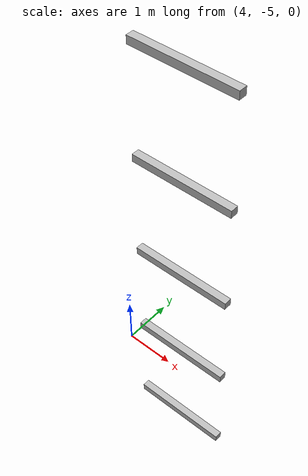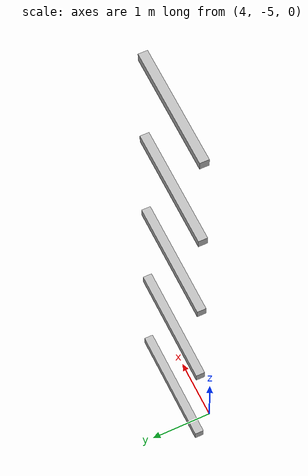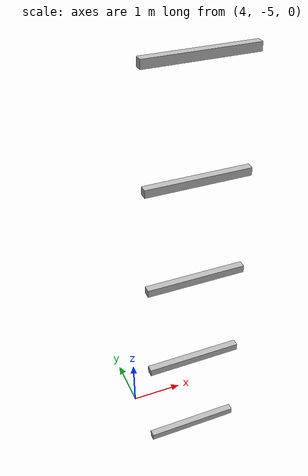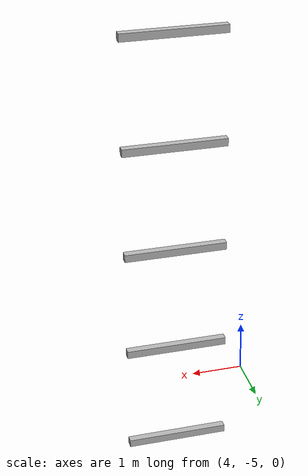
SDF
<sdf version="1.7">
 <world name="default">
  <model name="orthogonal_747_2.000.15_TS">
   <static>1</static>
   <link name="x_link_0_0_5">
    <inertial>
     <mass>1</mass>
     <inertia>
      <ixx>0.166667</ixx>
      <ixy>0</ixy>
      <ixz>0</ixz>
      <iyy>0.166667</iyy>
      <iyz>0</iyz>
      <izz>0.166667</izz>
     </inertia>
    </inertial>
    <pose>11.825 0 1.075 0 -0 0</pose>
    <visual name="visual_0">
     <laser_retro>106</laser_retro>
     <geometry><box><size>2 1e-06 0.15</size></box></geometry>
     <material>
      <script><name>Gazebo/Grey</name><uri>file://media/materials/scripts/gazebo.material</uri></script>
      <shader type="pixel"><normal_map>__default__</normal_map></shader>
      <ambient>0.678 0.498 0.659 1</ambient>
      <diffuse>0.7 0.7 0.7 1</diffuse>
      <specular>0.01 0.01 0.01 1</specular>
      <emissive>0 0 0 1</emissive>
     </material>
     <pose>0 -0.075 0 0 -0 0</pose>
     <transparency>1</transparency>
    </visual>
    <visual name="visual_1">
     <laser_retro>107</laser_retro>
     <geometry><box><size>2 1e-06 0.15</size></box></geometry>
     <material>
      <script><name>Gazebo/Grey</name><uri>file://media/materials/scripts/gazebo.material</uri></script>
      <shader type="pixel"><normal_map>__default__</normal_map></shader>
      <ambient>0.447 0.624 0.812 1</ambient>
      <diffuse>0.7 0.7 0.7 1</diffuse>
      <specular>0.01 0.01 0.01 1</specular>
      <emissive>0 0 0 1</emissive>
     </material>
     <pose>0 0.075 0 0 -0 0</pose>
     <transparency>1</transparency>
    </visual>
    <visual name="visual_2">
     <laser_retro>108</laser_retro>
     <geometry><box><size>2 0.15 1e-06</size></box></geometry>
     <material>
      <script><name>Gazebo/Grey</name><uri>file://media/materials/scripts/gazebo.material</uri></script>
      <shader type="pixel"><normal_map>__default__</normal_map></shader>
      <ambient>0.988 0.686 0.243 1</ambient>
      <diffuse>0.7 0.7 0.7 1</diffuse>
      <specular>0.01 0.01 0.01 1</specular>
      <emissive>0 0 0 1</emissive>
     </material>
     <pose>0 0 -0.075 0 -0 0</pose>
     <transparency>1</transparency>
    </visual>
    <visual name="visual_3">
     <laser_retro>109</laser_retro>
     <geometry><box><size>1e-06 0.15 0.15</size></box></geometry>
     <material>
      <script><name>Gazebo/Grey</name><uri>file://media/materials/scripts/gazebo.material</uri></script>
      <shader type="pixel"><normal_map>__default__</normal_map></shader>
      <ambient>0.988 0.914 0.31 1</ambient>
      <diffuse>0.7 0.7 0.7 1</diffuse>
      <specular>0.01 0.01 0.01 1</specular>
      <emissive>0 0 0 1</emissive>
     </material>
     <pose>1 0 0 0 -0 0</pose>
     <transparency>1</transparency>
    </visual>
    <visual name="visual_4">
     <laser_retro>110</laser_retro>
     <geometry><box><size>2 0.15 1e-06</size></box></geometry>
     <material>
      <script><name>Gazebo/Grey</name><uri>file://media/materials/scripts/gazebo.material</uri></script>
      <shader type="pixel"><normal_map>__default__</normal_map></shader>
      <ambient>0.937 0.161 0.161 1</ambient>
      <diffuse>0.7 0.7 0.7 1</diffuse>
      <specular>0.01 0.01 0.01 1</specular>
      <emissive>0 0 0 1</emissive>
     </material>
     <pose>0 0 0.075 0 -0 0</pose>
     <transparency>1</transparency>
    </visual>
    <visual name="visual_5">
     <laser_retro>111</laser_retro>
     <geometry><box><size>1e-06 0.15 0.15</size></box></geometry>
     <material>
      <script><name>Gazebo/Grey</name><uri>file://media/materials/scripts/gazebo.material</uri></script>
      <shader type="pixel"><normal_map>__default__</normal_map></shader>
      <ambient>0.541 0.886 0.204 1</ambient>
      <diffuse>0.7 0.7 0.7 1</diffuse>
      <specular>0.01 0.01 0.01 1</specular>
      <emissive>0 0 0 1</emissive>
     </material>
     <pose>-1 0 0 0 -0 0</pose>
     <transparency>1</transparency>
    </visual>
    <visual name="visual_texture">
     <geometry><box><size>1.9998 0.149985 0.149985</size></box></geometry>
     <material>
      <script>
       <uri>model://BASE_MODELS/simple_block_v2_textured/materials/scripts</uri>
       <uri>model://BASE_MODELS/simple_block_v2_textured/materials/textures</uri>
       <name>metal</name>
      </script>
     </material>
     <laser_retro>112</laser_retro>
    </visual>
    <collision name="collision">
     <geometry><box><size>2 0.15 0.15</size></box></geometry>
     <surface>
      <friction>
       <ode><mu>1</mu><mu2>1</mu2><fdir1>0 0 0</fdir1><slip1>0</slip1><slip2>0</slip2></ode>
       <torsional>
        <coefficient>1</coefficient>
        <patch_radius>0</patch_radius>
        <surface_radius>0</surface_radius>
        <use_patch_radius>1</use_patch_radius>
        <ode><slip>0</slip></ode>
       </torsional>
      </friction>
      <bounce><restitution_coefficient>0</restitution_coefficient><threshold>1e+06</threshold></bounce>
      <contact>
       <collide_without_contact>0</collide_without_contact>
       <collide_without_contact_bitmask>1</collide_without_contact_bitmask>
       <collide_bitmask>1</collide_bitmask>
       <ode>
        <soft_cfm>0</soft_cfm>
        <soft_erp>0.2</soft_erp>
        <kp>1e+13</kp>
        <kd>1</kd>
        <max_vel>0.01</max_vel>
        <min_depth>0</min_depth>
       </ode>
       <bullet>
        <split_impulse>1</split_impulse>
        <split_impulse_penetration_threshold>-0.01</split_impulse_penetration_threshold>
        <soft_cfm>0</soft_cfm>
        <soft_erp>0.2</soft_erp>
        <kp>1e+13</kp>
        <kd>1</kd>
       </bullet>
      </contact>
     </surface>
    </collision>
   </link>
   <link name="x_link_1_0_5">
    <inertial>
     <mass>1</mass>
     <inertia>
      <ixx>0.166667</ixx>
      <ixy>0</ixy>
      <ixz>0</ixz>
      <iyy>0.166667</iyy>
      <iyz>0</iyz>
      <izz>0.166667</izz>
     </inertia>
    </inertial>
    <pose>11.825 0 3.225 0 -0 0</pose>
    <visual name="visual_0">
     <laser_retro>890</laser_retro>
     <geometry><box><size>2 1e-06 0.15</size></box></geometry>
     <material>
      <script><name>Gazebo/Grey</name><uri>file://media/materials/scripts/gazebo.material</uri></script>
      <shader type="pixel"><normal_map>__default__</normal_map></shader>
      <ambient>0.678 0.498 0.659 1</ambient>
      <diffuse>0.7 0.7 0.7 1</diffuse>
      <specular>0.01 0.01 0.01 1</specular>
      <emissive>0 0 0 1</emissive>
     </material>
     <pose>0 -0.075 0 0 -0 0</pose>
     <transparency>1</transparency>
    </visual>
    <visual name="visual_1">
     <laser_retro>891</laser_retro>
     <geometry><box><size>2 1e-06 0.15</size></box></geometry>
     <material>
      <script><name>Gazebo/Grey</name><uri>file://media/materials/scripts/gazebo.material</uri></script>
      <shader type="pixel"><normal_map>__default__</normal_map></shader>
      <ambient>0.447 0.624 0.812 1</ambient>
      <diffuse>0.7 0.7 0.7 1</diffuse>
      <specular>0.01 0.01 0.01 1</specular>
      <emissive>0 0 0 1</emissive>
     </material>
     <pose>0 0.075 0 0 -0 0</pose>
     <transparency>1</transparency>
    </visual>
    <visual name="visual_2">
     <laser_retro>892</laser_retro>
     <geometry><box><size>2 0.15 1e-06</size></box></geometry>
     <material>
      <script><name>Gazebo/Grey</name><uri>file://media/materials/scripts/gazebo.material</uri></script>
      <shader type="pixel"><normal_map>__default__</normal_map></shader>
      <ambient>0.988 0.686 0.243 1</ambient>
      <diffuse>0.7 0.7 0.7 1</diffuse>
      <specular>0.01 0.01 0.01 1</specular>
      <emissive>0 0 0 1</emissive>
     </material>
     <pose>0 0 -0.075 0 -0 0</pose>
     <transparency>1</transparency>
    </visual>
    <visual name="visual_3">
     <laser_retro>893</laser_retro>
     <geometry><box><size>1e-06 0.15 0.15</size></box></geometry>
     <material>
      <script><name>Gazebo/Grey</name><uri>file://media/materials/scripts/gazebo.material</uri></script>
      <shader type="pixel"><normal_map>__default__</normal_map></shader>
      <ambient>0.988 0.914 0.31 1</ambient>
      <diffuse>0.7 0.7 0.7 1</diffuse>
      <specular>0.01 0.01 0.01 1</specular>
      <emissive>0 0 0 1</emissive>
     </material>
     <pose>1 0 0 0 -0 0</pose>
     <transparency>1</transparency>
    </visual>
    <visual name="visual_4">
     <laser_retro>894</laser_retro>
     <geometry><box><size>2 0.15 1e-06</size></box></geometry>
     <material>
      <script><name>Gazebo/Grey</name><uri>file://media/materials/scripts/gazebo.material</uri></script>
      <shader type="pixel"><normal_map>__default__</normal_map></shader>
      <ambient>0.937 0.161 0.161 1</ambient>
      <diffuse>0.7 0.7 0.7 1</diffuse>
      <specular>0.01 0.01 0.01 1</specular>
      <emissive>0 0 0 1</emissive>
     </material>
     <pose>0 0 0.075 0 -0 0</pose>
     <transparency>1</transparency>
    </visual>
    <visual name="visual_5">
     <laser_retro>895</laser_retro>
     <geometry><box><size>1e-06 0.15 0.15</size></box></geometry>
     <material>
      <script><name>Gazebo/Grey</name><uri>file://media/materials/scripts/gazebo.material</uri></script>
      <shader type="pixel"><normal_map>__default__</normal_map></shader>
      <ambient>0.541 0.886 0.204 1</ambient>
      <diffuse>0.7 0.7 0.7 1</diffuse>
      <specular>0.01 0.01 0.01 1</specular>
      <emissive>0 0 0 1</emissive>
     </material>
     <pose>-1 0 0 0 -0 0</pose>
     <transparency>1</transparency>
    </visual>
    <visual name="visual_texture">
     <geometry><box><size>1.9998 0.149985 0.149985</size></box></geometry>
     <material>
      <script>
       <uri>model://BASE_MODELS/simple_block_v2_textured/materials/scripts</uri>
       <uri>model://BASE_MODELS/simple_block_v2_textured/materials/textures</uri>
       <name>metal</name>
      </script>
     </material>
     <laser_retro>896</laser_retro>
    </visual>
    <collision name="collision">
     <geometry><box><size>2 0.15 0.15</size></box></geometry>
     <surface>
      <friction>
       <ode><mu>1</mu><mu2>1</mu2><fdir1>0 0 0</fdir1><slip1>0</slip1><slip2>0</slip2></ode>
       <torsional>
        <coefficient>1</coefficient>
        <patch_radius>0</patch_radius>
        <surface_radius>0</surface_radius>
        <use_patch_radius>1</use_patch_radius>
        <ode><slip>0</slip></ode>
       </torsional>
      </friction>
      <bounce><restitution_coefficient>0</restitution_coefficient><threshold>1e+06</threshold></bounce>
      <contact>
       <collide_without_contact>0</collide_without_contact>
       <collide_without_contact_bitmask>1</collide_without_contact_bitmask>
       <collide_bitmask>1</collide_bitmask>
       <ode>
        <soft_cfm>0</soft_cfm>
        <soft_erp>0.2</soft_erp>
        <kp>1e+13</kp>
        <kd>1</kd>
        <max_vel>0.01</max_vel>
        <min_depth>0</min_depth>
       </ode>
       <bullet>
        <split_impulse>1</split_impulse>
        <split_impulse_penetration_threshold>-0.01</split_impulse_penetration_threshold>
        <soft_cfm>0</soft_cfm>
        <soft_erp>0.2</soft_erp>
        <kp>1e+13</kp>
        <kd>1</kd>
       </bullet>
      </contact>
     </surface>
    </collision>
   </link>
   <link name="x_link_2_0_5">
    <inertial>
     <mass>1</mass>
     <inertia>
      <ixx>0.166667</ixx>
      <ixy>0</ixy>
      <ixz>0</ixz>
      <iyy>0.166667</iyy>
      <iyz>0</iyz>
      <izz>0.166667</izz>
     </inertia>
    </inertial>
    <pose>11.825 0 5.375 0 -0 0</pose>
    <visual name="visual_0">
     <laser_retro>1793</laser_retro>
     <geometry><box><size>2 1e-06 0.15</size></box></geometry>
     <material>
      <script><name>Gazebo/Grey</name><uri>file://media/materials/scripts/gazebo.material</uri></script>
      <shader type="pixel"><normal_map>__default__</normal_map></shader>
      <ambient>0.678 0.498 0.659 1</ambient>
      <diffuse>0.7 0.7 0.7 1</diffuse>
      <specular>0.01 0.01 0.01 1</specular>
      <emissive>0 0 0 1</emissive>
     </material>
     <pose>0 -0.075 0 0 -0 0</pose>
     <transparency>1</transparency>
    </visual>
    <visual name="visual_1">
     <laser_retro>1794</laser_retro>
     <geometry><box><size>2 1e-06 0.15</size></box></geometry>
     <material>
      <script><name>Gazebo/Grey</name><uri>file://media/materials/scripts/gazebo.material</uri></script>
      <shader type="pixel"><normal_map>__default__</normal_map></shader>
      <ambient>0.447 0.624 0.812 1</ambient>
      <diffuse>0.7 0.7 0.7 1</diffuse>
      <specular>0.01 0.01 0.01 1</specular>
      <emissive>0 0 0 1</emissive>
     </material>
     <pose>0 0.075 0 0 -0 0</pose>
     <transparency>1</transparency>
    </visual>
    <visual name="visual_2">
     <laser_retro>1795</laser_retro>
     <geometry><box><size>2 0.15 1e-06</size></box></geometry>
     <material>
      <script><name>Gazebo/Grey</name><uri>file://media/materials/scripts/gazebo.material</uri></script>
      <shader type="pixel"><normal_map>__default__</normal_map></shader>
      <ambient>0.988 0.686 0.243 1</ambient>
      <diffuse>0.7 0.7 0.7 1</diffuse>
      <specular>0.01 0.01 0.01 1</specular>
      <emissive>0 0 0 1</emissive>
     </material>
     <pose>0 0 -0.075 0 -0 0</pose>
     <transparency>1</transparency>
    </visual>
    <visual name="visual_3">
     <laser_retro>1796</laser_retro>
     <geometry><box><size>1e-06 0.15 0.15</size></box></geometry>
     <material>
      <script><name>Gazebo/Grey</name><uri>file://media/materials/scripts/gazebo.material</uri></script>
      <shader type="pixel"><normal_map>__default__</normal_map></shader>
      <ambient>0.988 0.914 0.31 1</ambient>
      <diffuse>0.7 0.7 0.7 1</diffuse>
      <specular>0.01 0.01 0.01 1</specular>
      <emissive>0 0 0 1</emissive>
     </material>
     <pose>1 0 0 0 -0 0</pose>
     <transparency>1</transparency>
    </visual>
    <visual name="visual_4">
     <laser_retro>1797</laser_retro>
     <geometry><box><size>2 0.15 1e-06</size></box></geometry>
     <material>
      <script><name>Gazebo/Grey</name><uri>file://media/materials/scripts/gazebo.material</uri></script>
      <shader type="pixel"><normal_map>__default__</normal_map></shader>
      <ambient>0.937 0.161 0.161 1</ambient>
      <diffuse>0.7 0.7 0.7 1</diffuse>
      <specular>0.01 0.01 0.01 1</specular>
      <emissive>0 0 0 1</emissive>
     </material>
     <pose>0 0 0.075 0 -0 0</pose>
     <transparency>1</transparency>
    </visual>
    <visual name="visual_5">
     <laser_retro>1798</laser_retro>
     <geometry><box><size>1e-06 0.15 0.15</size></box></geometry>
     <material>
      <script><name>Gazebo/Grey</name><uri>file://media/materials/scripts/gazebo.material</uri></script>
      <shader type="pixel"><normal_map>__default__</normal_map></shader>
      <ambient>0.541 0.886 0.204 1</ambient>
      <diffuse>0.7 0.7 0.7 1</diffuse>
      <specular>0.01 0.01 0.01 1</specular>
      <emissive>0 0 0 1</emissive>
     </material>
     <pose>-1 0 0 0 -0 0</pose>
     <transparency>1</transparency>
    </visual>
    <visual name="visual_texture">
     <geometry><box><size>1.9998 0.149985 0.149985</size></box></geometry>
     <material>
      <script>
       <uri>model://BASE_MODELS/simple_block_v2_textured/materials/scripts</uri>
       <uri>model://BASE_MODELS/simple_block_v2_textured/materials/textures</uri>
       <name>metal</name>
      </script>
     </material>
     <laser_retro>1799</laser_retro>
    </visual>
    <collision name="collision">
     <geometry><box><size>2 0.15 0.15</size></box></geometry>
     <surface>
      <friction>
       <ode><mu>1</mu><mu2>1</mu2><fdir1>0 0 0</fdir1><slip1>0</slip1><slip2>0</slip2></ode>
       <torsional>
        <coefficient>1</coefficient>
        <patch_radius>0</patch_radius>
        <surface_radius>0</surface_radius>
        <use_patch_radius>1</use_patch_radius>
        <ode><slip>0</slip></ode>
       </torsional>
      </friction>
      <bounce><restitution_coefficient>0</restitution_coefficient><threshold>1e+06</threshold></bounce>
      <contact>
       <collide_without_contact>0</collide_without_contact>
       <collide_without_contact_bitmask>1</collide_without_contact_bitmask>
       <collide_bitmask>1</collide_bitmask>
       <ode>
        <soft_cfm>0</soft_cfm>
        <soft_erp>0.2</soft_erp>
        <kp>1e+13</kp>
        <kd>1</kd>
        <max_vel>0.01</max_vel>
        <min_depth>0</min_depth>
       </ode>
       <bullet>
        <split_impulse>1</split_impulse>
        <split_impulse_penetration_threshold>-0.01</split_impulse_penetration_threshold>
        <soft_cfm>0</soft_cfm>
        <soft_erp>0.2</soft_erp>
        <kp>1e+13</kp>
        <kd>1</kd>
       </bullet>
      </contact>
     </surface>
    </collision>
   </link>
   <link name="x_link_3_0_5">
    <inertial>
     <mass>1</mass>
     <inertia>
      <ixx>0.166667</ixx>
      <ixy>0</ixy>
      <ixz>0</ixz>
      <iyy>0.166667</iyy>
      <iyz>0</iyz>
      <izz>0.166667</izz>
     </inertia>
    </inertial>
    <pose>11.825 0 7.525 0 -0 0</pose>
    <visual name="visual_0">
     <laser_retro>2696</laser_retro>
     <geometry><box><size>2 1e-06 0.15</size></box></geometry>
     <material>
      <script><name>Gazebo/Grey</name><uri>file://media/materials/scripts/gazebo.material</uri></script>
      <shader type="pixel"><normal_map>__default__</normal_map></shader>
      <ambient>0.678 0.498 0.659 1</ambient>
      <diffuse>0.7 0.7 0.7 1</diffuse>
      <specular>0.01 0.01 0.01 1</specular>
      <emissive>0 0 0 1</emissive>
     </material>
     <pose>0 -0.075 0 0 -0 0</pose>
     <transparency>1</transparency>
    </visual>
    <visual name="visual_1">
     <laser_retro>2697</laser_retro>
     <geometry><box><size>2 1e-06 0.15</size></box></geometry>
     <material>
      <script><name>Gazebo/Grey</name><uri>file://media/materials/scripts/gazebo.material</uri></script>
      <shader type="pixel"><normal_map>__default__</normal_map></shader>
      <ambient>0.447 0.624 0.812 1</ambient>
      <diffuse>0.7 0.7 0.7 1</diffuse>
      <specular>0.01 0.01 0.01 1</specular>
      <emissive>0 0 0 1</emissive>
     </material>
     <pose>0 0.075 0 0 -0 0</pose>
     <transparency>1</transparency>
    </visual>
    <visual name="visual_2">
     <laser_retro>2698</laser_retro>
     <geometry><box><size>2 0.15 1e-06</size></box></geometry>
     <material>
      <script><name>Gazebo/Grey</name><uri>file://media/materials/scripts/gazebo.material</uri></script>
      <shader type="pixel"><normal_map>__default__</normal_map></shader>
      <ambient>0.988 0.686 0.243 1</ambient>
      <diffuse>0.7 0.7 0.7 1</diffuse>
      <specular>0.01 0.01 0.01 1</specular>
      <emissive>0 0 0 1</emissive>
     </material>
     <pose>0 0 -0.075 0 -0 0</pose>
     <transparency>1</transparency>
    </visual>
    <visual name="visual_3">
     <laser_retro>2699</laser_retro>
     <geometry><box><size>1e-06 0.15 0.15</size></box></geometry>
     <material>
      <script><name>Gazebo/Grey</name><uri>file://media/materials/scripts/gazebo.material</uri></script>
      <shader type="pixel"><normal_map>__default__</normal_map></shader>
      <ambient>0.988 0.914 0.31 1</ambient>
      <diffuse>0.7 0.7 0.7 1</diffuse>
      <specular>0.01 0.01 0.01 1</specular>
      <emissive>0 0 0 1</emissive>
     </material>
     <pose>1 0 0 0 -0 0</pose>
     <transparency>1</transparency>
    </visual>
    <visual name="visual_4">
     <laser_retro>2700</laser_retro>
     <geometry><box><size>2 0.15 1e-06</size></box></geometry>
     <material>
      <script><name>Gazebo/Grey</name><uri>file://media/materials/scripts/gazebo.material</uri></script>
      <shader type="pixel"><normal_map>__default__</normal_map></shader>
      <ambient>0.937 0.161 0.161 1</ambient>
      <diffuse>0.7 0.7 0.7 1</diffuse>
      <specular>0.01 0.01 0.01 1</specular>
      <emissive>0 0 0 1</emissive>
     </material>
     <pose>0 0 0.075 0 -0 0</pose>
     <transparency>1</transparency>
    </visual>
    <visual name="visual_5">
     <laser_retro>2701</laser_retro>
     <geometry><box><size>1e-06 0.15 0.15</size></box></geometry>
     <material>
      <script><name>Gazebo/Grey</name><uri>file://media/materials/scripts/gazebo.material</uri></script>
      <shader type="pixel"><normal_map>__default__</normal_map></shader>
      <ambient>0.541 0.886 0.204 1</ambient>
      <diffuse>0.7 0.7 0.7 1</diffuse>
      <specular>0.01 0.01 0.01 1</specular>
      <emissive>0 0 0 1</emissive>
     </material>
     <pose>-1 0 0 0 -0 0</pose>
     <transparency>1</transparency>
    </visual>
    <visual name="visual_texture">
     <geometry><box><size>1.9998 0.149985 0.149985</size></box></geometry>
     <material>
      <script>
       <uri>model://BASE_MODELS/simple_block_v2_textured/materials/scripts</uri>
       <uri>model://BASE_MODELS/simple_block_v2_textured/materials/textures</uri>
       <name>metal</name>
      </script>
     </material>
     <laser_retro>2702</laser_retro>
    </visual>
    <collision name="collision">
     <geometry><box><size>2 0.15 0.15</size></box></geometry>
     <surface>
      <friction>
       <ode><mu>1</mu><mu2>1</mu2><fdir1>0 0 0</fdir1><slip1>0</slip1><slip2>0</slip2></ode>
       <torsional>
        <coefficient>1</coefficient>
        <patch_radius>0</patch_radius>
        <surface_radius>0</surface_radius>
        <use_patch_radius>1</use_patch_radius>
        <ode><slip>0</slip></ode>
       </torsional>
      </friction>
      <bounce><restitution_coefficient>0</restitution_coefficient><threshold>1e+06</threshold></bounce>
      <contact>
       <collide_without_contact>0</collide_without_contact>
       <collide_without_contact_bitmask>1</collide_without_contact_bitmask>
       <collide_bitmask>1</collide_bitmask>
       <ode>
        <soft_cfm>0</soft_cfm>
        <soft_erp>0.2</soft_erp>
        <kp>1e+13</kp>
        <kd>1</kd>
        <max_vel>0.01</max_vel>
        <min_depth>0</min_depth>
       </ode>
       <bullet>
        <split_impulse>1</split_impulse>
        <split_impulse_penetration_threshold>-0.01</split_impulse_penetration_threshold>
        <soft_cfm>0</soft_cfm>
        <soft_erp>0.2</soft_erp>
        <kp>1e+13</kp>
        <kd>1</kd>
       </bullet>
      </contact>
     </surface>
    </collision>
   </link>
   <link name="x_link_4_0_5">
    <inertial>
     <mass>1</mass>
     <inertia>
      <ixx>0.166667</ixx>
      <ixy>0</ixy>
      <ixz>0</ixz>
      <iyy>0.166667</iyy>
      <iyz>0</iyz>
      <izz>0.166667</izz>
     </inertia>
    </inertial>
    <pose>11.825 0 9.675 0 -0 0</pose>
    <visual name="visual_0">
     <laser_retro>3599</laser_retro>
     <geometry><box><size>2 1e-06 0.15</size></box></geometry>
     <material>
      <script><name>Gazebo/Grey</name><uri>file://media/materials/scripts/gazebo.material</uri></script>
      <shader type="pixel"><normal_map>__default__</normal_map></shader>
      <ambient>0.678 0.498 0.659 1</ambient>
      <diffuse>0.7 0.7 0.7 1</diffuse>
      <specular>0.01 0.01 0.01 1</specular>
      <emissive>0 0 0 1</emissive>
     </material>
     <pose>0 -0.075 0 0 -0 0</pose>
     <transparency>1</transparency>
    </visual>
    <visual name="visual_1">
     <laser_retro>3600</laser_retro>
     <geometry><box><size>2 1e-06 0.15</size></box></geometry>
     <material>
      <script><name>Gazebo/Grey</name><uri>file://media/materials/scripts/gazebo.material</uri></script>
      <shader type="pixel"><normal_map>__default__</normal_map></shader>
      <ambient>0.447 0.624 0.812 1</ambient>
      <diffuse>0.7 0.7 0.7 1</diffuse>
      <specular>0.01 0.01 0.01 1</specular>
      <emissive>0 0 0 1</emissive>
     </material>
     <pose>0 0.075 0 0 -0 0</pose>
     <transparency>1</transparency>
    </visual>
    <visual name="visual_2">
     <laser_retro>3601</laser_retro>
     <geometry><box><size>2 0.15 1e-06</size></box></geometry>
     <material>
      <script><name>Gazebo/Grey</name><uri>file://media/materials/scripts/gazebo.material</uri></script>
      <shader type="pixel"><normal_map>__default__</normal_map></shader>
      <ambient>0.988 0.686 0.243 1</ambient>
      <diffuse>0.7 0.7 0.7 1</diffuse>
      <specular>0.01 0.01 0.01 1</specular>
      <emissive>0 0 0 1</emissive>
     </material>
     <pose>0 0 -0.075 0 -0 0</pose>
     <transparency>1</transparency>
    </visual>
    <visual name="visual_3">
     <laser_retro>3602</laser_retro>
     <geometry><box><size>1e-06 0.15 0.15</size></box></geometry>
     <material>
      <script><name>Gazebo/Grey</name><uri>file://media/materials/scripts/gazebo.material</uri></script>
      <shader type="pixel"><normal_map>__default__</normal_map></shader>
      <ambient>0.988 0.914 0.31 1</ambient>
      <diffuse>0.7 0.7 0.7 1</diffuse>
      <specular>0.01 0.01 0.01 1</specular>
      <emissive>0 0 0 1</emissive>
     </material>
     <pose>1 0 0 0 -0 0</pose>
     <transparency>1</transparency>
    </visual>
    <visual name="visual_4">
     <laser_retro>3603</laser_retro>
     <geometry><box><size>2 0.15 1e-06</size></box></geometry>
     <material>
      <script><name>Gazebo/Grey</name><uri>file://media/materials/scripts/gazebo.material</uri></script>
      <shader type="pixel"><normal_map>__default__</normal_map></shader>
      <ambient>0.937 0.161 0.161 1</ambient>
      <diffuse>0.7 0.7 0.7 1</diffuse>
      <specular>0.01 0.01 0.01 1</specular>
      <emissive>0 0 0 1</emissive>
     </material>
     <pose>0 0 0.075 0 -0 0</pose>
     <transparency>1</transparency>
    </visual>
    <visual name="visual_5">
     <laser_retro>3604</laser_retro>
     <geometry><box><size>1e-06 0.15 0.15</size></box></geometry>
     <material>
      <script><name>Gazebo/Grey</name><uri>file://media/materials/scripts/gazebo.material</uri></script>
      <shader type="pixel"><normal_map>__default__</normal_map></shader>
      <ambient>0.541 0.886 0.204 1</ambient>
      <diffuse>0.7 0.7 0.7 1</diffuse>
      <specular>0.01 0.01 0.01 1</specular>
      <emissive>0 0 0 1</emissive>
     </material>
     <pose>-1 0 0 0 -0 0</pose>
     <transparency>1</transparency>
    </visual>
    <visual name="visual_texture">
     <geometry><box><size>1.9998 0.149985 0.149985</size></box></geometry>
     <material>
      <script>
       <uri>model://BASE_MODELS/simple_block_v2_textured/materials/scripts</uri>
       <uri>model://BASE_MODELS/simple_block_v2_textured/materials/textures</uri>
       <name>metal</name>
      </script>
     </material>
     <laser_retro>3605</laser_retro>
    </visual>
    <collision name="collision">
     <geometry><box><size>2 0.15 0.15</size></box></geometry>
     <surface>
      <friction>
       <ode><mu>1</mu><mu2>1</mu2><fdir1>0 0 0</fdir1><slip1>0</slip1><slip2>0</slip2></ode>
       <torsional>
        <coefficient>1</coefficient>
        <patch_radius>0</patch_radius>
        <surface_radius>0</surface_radius>
        <use_patch_radius>1</use_patch_radius>
        <ode><slip>0</slip></ode>
       </torsional>
      </friction>
      <bounce><restitution_coefficient>0</restitution_coefficient><threshold>1e+06</threshold></bounce>
      <contact>
       <collide_without_contact>0</collide_without_contact>
       <collide_without_contact_bitmask>1</collide_without_contact_bitmask>
       <collide_bitmask>1</collide_bitmask>
       <ode>
        <soft_cfm>0</soft_cfm>
        <soft_erp>0.2</soft_erp>
        <kp>1e+13</kp>
        <kd>1</kd>
        <max_vel>0.01</max_vel>
        <min_depth>0</min_depth>
       </ode>
       <bullet>
        <split_impulse>1</split_impulse>
        <split_impulse_penetration_threshold>-0.01</split_impulse_penetration_threshold>
        <soft_cfm>0</soft_cfm>
        <soft_erp>0.2</soft_erp>
        <kp>1e+13</kp>
        <kd>1</kd>
       </bullet>
      </contact>
     </surface>
    </collision>
   </link>
   <pose>-6.47624 -5 -2.5 0 -0 0</pose>
  </model>
 </world>
</sdf>
